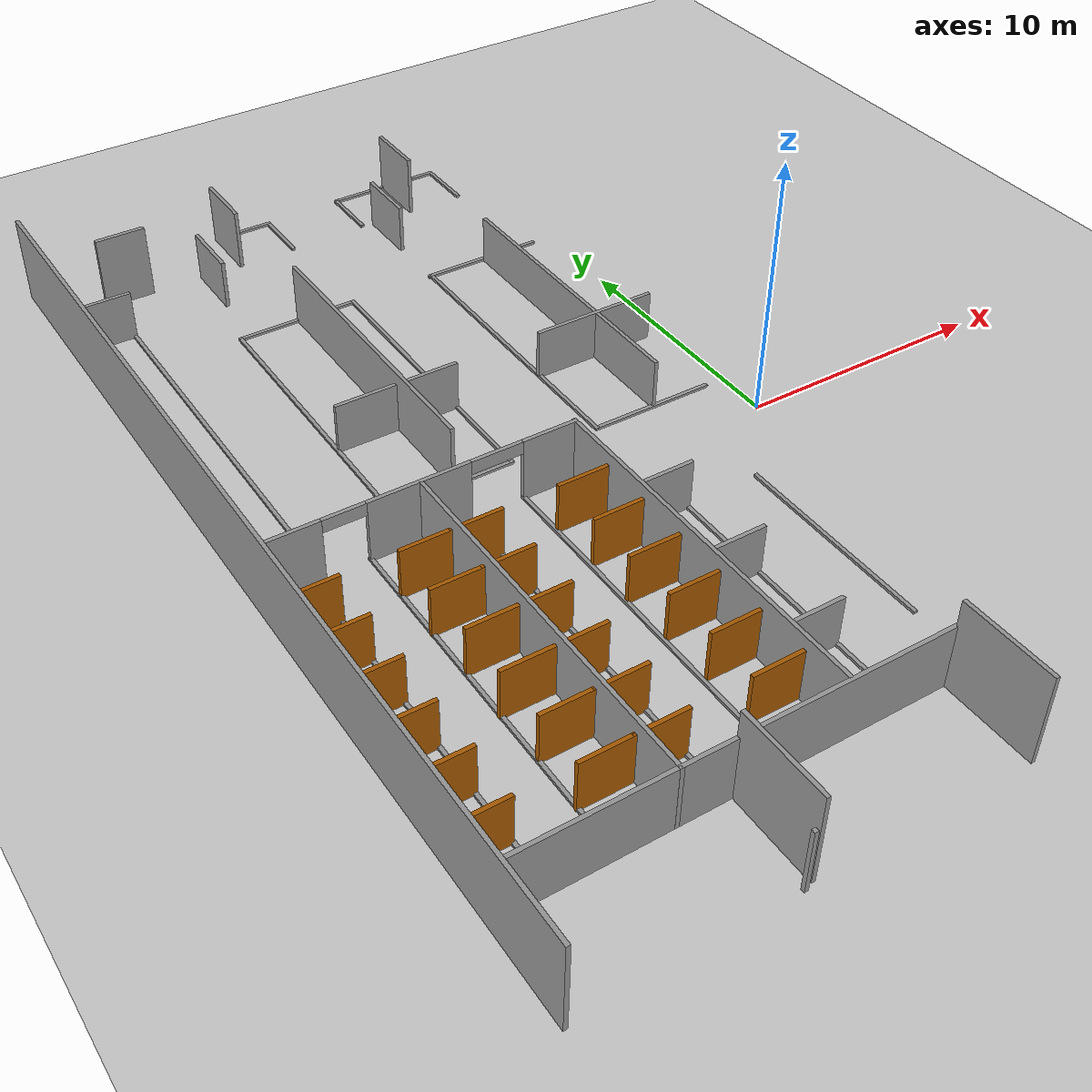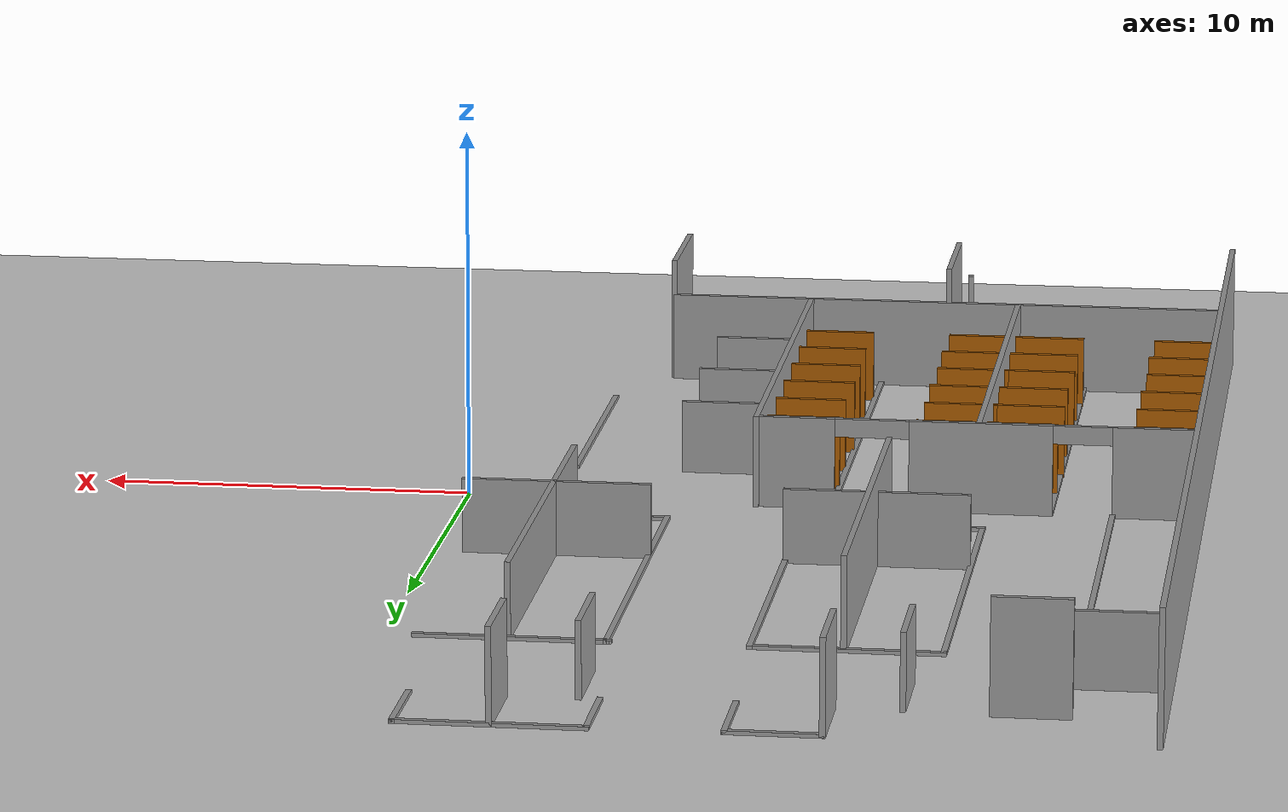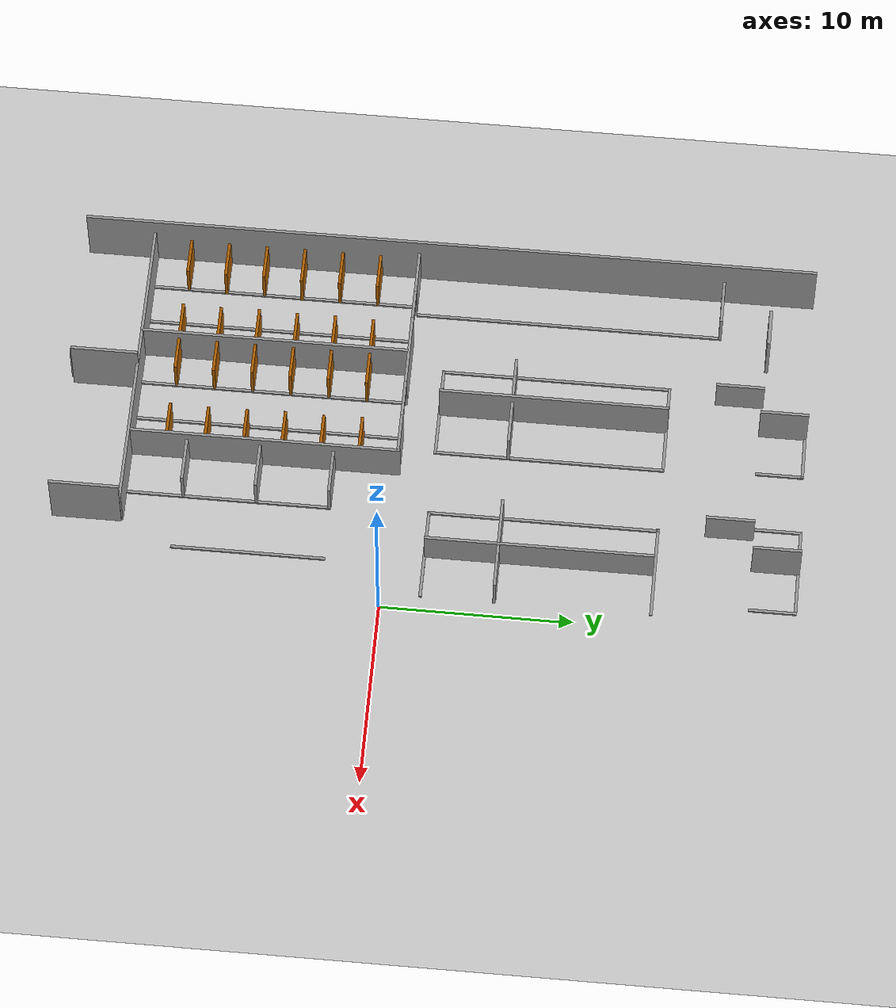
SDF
<sdf version="1.7">
 <world name="default">
  <model name="ground_plane">
   <static>1</static>
   <link name="link">
    <collision name="collision">
     <geometry><plane><normal>0 0 1</normal><size>100 100</size></plane></geometry>
     <surface><friction><ode><mu>100</mu><mu2>50</mu2></ode></friction></surface>
    </collision>
    <visual name="visual">
     <cast_shadows>0</cast_shadows>
     <geometry><plane><normal>0 0 1</normal><size>100 100</size></plane></geometry>
     <material>
      <script><uri>file://media/materials/scripts/gazebo.material</uri><name>Gazebo/Grey</name></script>
     </material>
    </visual>
   </link>
  </model>
  <model name="ATC_hall">
   <pose>0.064513 1.99679 0 0 -0 0</pose>
   <link name="Door_8">
    <collision name="Door_8_Collision">
     <geometry><box><size>2 0.17 3</size></box></geometry>
     <pose>0 0 1.5 0 -0 0</pose>
    </collision>
    <visual name="Door_8_Visual">
     <pose>0 0 1.5 0 -0 0</pose>
     <geometry><box><size>2 0.17 3</size></box></geometry>
     <material>
      <script><uri>file://media/materials/scripts/gazebo.material</uri><name>Gazebo/Grey</name></script>
     </material>
    </visual>
    <pose>-16.713 16.852 0 0 -0 0</pose>
   </link>
   <link name="Wall_11">
    <collision name="Wall_11_Collision">
     <geometry><box><size>0.15 0.15 2.5</size></box></geometry>
     <pose>0 0 1.25 0 -0 0</pose>
    </collision>
    <visual name="Wall_11_Visual">
     <pose>0 0 1.25 0 -0 0</pose>
     <geometry><box><size>0.15 0.15 2.5</size></box></geometry>
     <material>
      <script><uri>file://media/materials/scripts/gazebo.material</uri><name>Gazebo/Grey</name></script>
      <ambient>1 1 1 1</ambient>
     </material>
     <meta><layer>0</layer></meta>
    </visual>
    <pose>-12.273 -19.224 0 0 -0 0</pose>
   </link>
   <link name="Wall_13">
    <collision name="Wall_13_Collision">
     <geometry><box><size>3.5 0.15 3.5</size></box></geometry>
     <pose>0 0 1.75 0 -0 0</pose>
    </collision>
    <visual name="Wall_13_Visual">
     <pose>0 0 1.75 0 -0 0</pose>
     <geometry><box><size>3.5 0.15 3.5</size></box></geometry>
     <material>
      <script><uri>file://media/materials/scripts/gazebo.material</uri><name>Gazebo/Grey</name></script>
      <ambient>0.890196 0.890196 0.890196 1</ambient>
     </material>
     <meta><layer>0</layer></meta>
    </visual>
    <pose>-11.92 -17.41 0 0 -0 1.5708</pose>
   </link>
   <link name="Wall_15">
    <collision name="Wall_15_Collision">
     <geometry><box><size>3.6 0.15 3.5</size></box></geometry>
     <pose>0 0 1.75 0 -0 0</pose>
    </collision>
    <visual name="Wall_15_Visual">
     <pose>0 0 1.75 0 -0 0</pose>
     <geometry><box><size>3.6 0.15 3.5</size></box></geometry>
     <material>
      <script><uri>file://media/materials/scripts/gazebo.material</uri><name>Gazebo/Grey</name></script>
      <ambient>0.890196 0.890196 0.890196 1</ambient>
     </material>
     <meta><layer>0</layer></meta>
    </visual>
    <pose>-3.92 -17.519 0 0 -0 -1.5708</pose>
   </link>
   <link name="Wall_199">
    <collision name="Wall_199_Collision">
     <geometry><box><size>16.059 0.15 0.1</size></box></geometry>
     <pose>0 0 0.05 0 -0 0</pose>
    </collision>
    <visual name="Wall_199_Visual">
     <pose>0 0 0.05 0 -0 0</pose>
     <geometry><box><size>16.059 0.15 0.1</size></box></geometry>
     <material>
      <script><uri>file://media/materials/scripts/gazebo.material</uri><name>Gazebo/Grey</name></script>
      <ambient>0.454902 0.454902 0.454902 1</ambient>
     </material>
     <meta><layer>0</layer></meta>
    </visual>
    <pose>-17.5375 6.3535 0 0 -0 -1.57048</pose>
   </link>
   <link name="Wall_204">
    <collision name="Wall_204_Collision">
     <geometry><box><size>14 0.15 0.1</size></box></geometry>
     <pose>0 0 0.05 0 -0 0</pose>
    </collision>
    <visual name="Wall_204_Visual">
     <pose>0 0 0.05 0 -0 0</pose>
     <geometry><box><size>14 0.15 0.1</size></box></geometry>
     <material>
      <script><uri>file://media/materials/scripts/gazebo.material</uri><name>Gazebo/Grey</name></script>
      <ambient>0.462745 0.462745 0.462745 1</ambient>
     </material>
     <meta><layer>0</layer></meta>
    </visual>
    <pose>-18.002 -8.696 0 0 -0 -1.5708</pose>
   </link>
   <link name="Wall_206">
    <collision name="Wall_206_Collision">
     <geometry><box><size>14 0.15 0.1</size></box></geometry>
     <pose>0 0 0.05 0 -0 0</pose>
    </collision>
    <visual name="Wall_206_Visual">
     <pose>0 0 0.05 0 -0 0</pose>
     <geometry><box><size>14 0.15 0.1</size></box></geometry>
     <material>
      <script><uri>file://media/materials/scripts/gazebo.material</uri><name>Gazebo/Grey</name></script>
      <ambient>0.462745 0.462745 0.462745 1</ambient>
     </material>
     <meta><layer>0</layer></meta>
    </visual>
    <pose>-15.864 -8.685 0 0 -0 -1.5708</pose>
   </link>
   <link name="Wall_208">
    <collision name="Wall_208_Collision">
     <geometry><box><size>14 0.15 0.1</size></box></geometry>
     <pose>0 0 0.05 0 -0 0</pose>
    </collision>
    <visual name="Wall_208_Visual">
     <pose>0 0 0.05 0 -0 0</pose>
     <geometry><box><size>14 0.15 0.1</size></box></geometry>
     <material>
      <script><uri>file://media/materials/scripts/gazebo.material</uri><name>Gazebo/Grey</name></script>
      <ambient>0.462745 0.462745 0.462745 1</ambient>
     </material>
     <meta><layer>0</layer></meta>
    </visual>
    <pose>-12.133 -8.708 0 0 -0 -1.5708</pose>
   </link>
   <link name="Wall_21">
    <collision name="Wall_21_Collision">
     <geometry><box><size>16.1 0.15 2.5</size></box></geometry>
     <pose>0 0 1.25 0 -0 0</pose>
    </collision>
    <visual name="Wall_21_Visual">
     <pose>0 0 1.25 0 -0 0</pose>
     <geometry><box><size>16.1 0.15 2.5</size></box></geometry>
     <material>
      <script><uri>file://media/materials/scripts/gazebo.material</uri><name>Gazebo/Grey</name></script>
      <ambient>0.890196 0.890196 0.890196 1</ambient>
     </material>
     <meta><layer>0</layer></meta>
    </visual>
    <pose>-11.934 -15.713 0 0 -0 0</pose>
   </link>
   <link name="Wall_211">
    <collision name="Wall_211_Collision">
     <geometry><box><size>14 0.15 0.1</size></box></geometry>
     <pose>0 0 0.05 0 -0 0</pose>
    </collision>
    <visual name="Wall_211_Visual">
     <pose>0 0 0.05 0 -0 0</pose>
     <geometry><box><size>14 0.15 0.1</size></box></geometry>
     <material>
      <script><uri>file://media/materials/scripts/gazebo.material</uri><name>Gazebo/Grey</name></script>
      <ambient>0.462745 0.462745 0.462745 1</ambient>
     </material>
     <meta><layer>0</layer></meta>
    </visual>
    <pose>-9.981 -8.67 0 0 -0 -1.5708</pose>
   </link>
   <link name="Wall_213">
    <collision name="Wall_213_Collision">
     <geometry><box><size>2.5 0.15 0.1</size></box></geometry>
     <pose>0 0 0.05 0 -0 0</pose>
    </collision>
    <visual name="Wall_213_Visual">
     <pose>0 0 0.05 0 -0 0</pose>
     <geometry><box><size>2.5 0.15 0.1</size></box></geometry>
     <material>
      <script><uri>file://media/materials/scripts/gazebo.material</uri><name>Gazebo/Grey</name></script>
      <ambient>0.454902 0.454902 0.454902 1</ambient>
     </material>
     <meta><layer>0</layer></meta>
    </visual>
    <pose>-10.745 19.117 0 0 -0 0</pose>
   </link>
   <link name="Wall_216">
    <collision name="Wall_216_Collision">
     <geometry><box><size>2.5 0.15 0.1</size></box></geometry>
     <pose>0 0 0.05 0 -0 0</pose>
    </collision>
    <visual name="Wall_216_Visual">
     <pose>0 0 0.05 0 -0 0</pose>
     <geometry><box><size>2.5 0.15 0.1</size></box></geometry>
     <material>
      <script><uri>file://media/materials/scripts/gazebo.material</uri><name>Gazebo/Grey</name></script>
      <ambient>0.454902 0.454902 0.454902 1</ambient>
     </material>
     <meta><layer>0</layer></meta>
    </visual>
    <pose>-9.57 17.942 0 0 -0 -1.5708</pose>
   </link>
   <link name="Wall_220">
    <collision name="Wall_220_Collision">
     <geometry><box><size>2.5 0.15 0.1</size></box></geometry>
     <pose>0 0 0.05 0 -0 0</pose>
    </collision>
    <visual name="Wall_220_Visual">
     <pose>0 0 0.05 0 -0 0</pose>
     <geometry><box><size>2.5 0.15 0.1</size></box></geometry>
     <material>
      <script><uri>file://media/materials/scripts/gazebo.material</uri><name>Gazebo/Grey</name></script>
      <ambient>0.462745 0.462745 0.462745 1</ambient>
     </material>
     <meta><layer>0</layer></meta>
    </visual>
    <pose>-5.095 19.238 0 0 -0 3.14159</pose>
   </link>
   <link name="Wall_222">
    <collision name="Wall_222_Collision">
     <geometry><box><size>2.5 0.15 0.1</size></box></geometry>
     <pose>0 0 0.05 0 -0 0</pose>
    </collision>
    <visual name="Wall_222_Visual">
     <pose>0 0 0.05 0 -0 0</pose>
     <geometry><box><size>2.5 0.15 0.1</size></box></geometry>
     <material>
      <script><uri>file://media/materials/scripts/gazebo.material</uri><name>Gazebo/Grey</name></script>
      <ambient>0.454902 0.454902 0.454902 1</ambient>
     </material>
     <meta><layer>0</layer></meta>
    </visual>
    <pose>-6.27 18.063 0 0 -0 -1.5708</pose>
   </link>
   <link name="Wall_224">
    <collision name="Wall_224_Collision">
     <geometry><box><size>2.5 0.15 0.1</size></box></geometry>
     <pose>0 0 0.05 0 -0 0</pose>
    </collision>
    <visual name="Wall_224_Visual">
     <pose>0 0 0.05 0 -0 0</pose>
     <geometry><box><size>2.5 0.15 0.1</size></box></geometry>
     <material>
      <script><uri>file://media/materials/scripts/gazebo.material</uri><name>Gazebo/Grey</name></script>
      <ambient>0.462745 0.462745 0.462745 1</ambient>
     </material>
     <meta><layer>0</layer></meta>
    </visual>
    <pose>-2.745 19.238 0 0 -0 0</pose>
   </link>
   <link name="Wall_226">
    <collision name="Wall_226_Collision">
     <geometry><box><size>2.5 0.15 0.1</size></box></geometry>
     <pose>0 0 0.05 0 -0 0</pose>
    </collision>
    <visual name="Wall_226_Visual">
     <pose>0 0 0.05 0 -0 0</pose>
     <geometry><box><size>2.5 0.15 0.1</size></box></geometry>
     <material>
      <script><uri>file://media/materials/scripts/gazebo.material</uri><name>Gazebo/Grey</name></script>
      <ambient>0.462745 0.462745 0.462745 1</ambient>
     </material>
     <meta><layer>0</layer></meta>
    </visual>
    <pose>-1.57 18.063 0 0 -0 -1.5708</pose>
   </link>
   <link name="Wall_25">
    <collision name="Wall_25_Collision">
     <geometry><box><size>14.0341 0.15 2.5</size></box></geometry>
     <pose>0 0 1.25 0 -0 0</pose>
    </collision>
    <visual name="Wall_25_Visual">
     <pose>0 0 1.25 0 -0 0</pose>
     <geometry><box><size>14.0341 0.15 2.5</size></box></geometry>
     <material>
      <script><uri>file://media/materials/scripts/gazebo.material</uri><name>Gazebo/Grey</name></script>
      <ambient>0.890196 0.890196 0.890196 1</ambient>
     </material>
     <meta><layer>0</layer></meta>
    </visual>
    <pose>-7.92273 -8.65395 0 0 -0 1.57119</pose>
   </link>
   <link name="Wall_27">
    <pose>-13.8505 -1.75145 0 0 -0 3.14159</pose>
    <visual name="Wall_27_Visual_0">
     <pose>-4.90273 0 1.25 0 -0 0</pose>
     <geometry><box><size>2.19455 0.15 2.5</size></box></geometry>
     <material>
      <script><uri>file://media/materials/scripts/gazebo.material</uri><name>Gazebo/Grey</name></script>
      <ambient>0.890196 0.890196 0.890196 1</ambient>
     </material>
     <meta><layer>0</layer></meta>
    </visual>
    <collision name="Wall_27_Collision_0">
     <geometry><box><size>2.19455 0.15 2.5</size></box></geometry>
     <pose>-4.90273 0 1.25 0 -0 0</pose>
    </collision>
    <visual name="Wall_27_Visual_1">
     <pose>0.128549 0 1.25 0 -0 0</pose>
     <geometry><box><size>3.868 0.15 2.5</size></box></geometry>
     <material>
      <script><uri>file://media/materials/scripts/gazebo.material</uri><name>Gazebo/Grey</name></script>
      <ambient>0.890196 0.890196 0.890196 1</ambient>
     </material>
     <meta><layer>0</layer></meta>
    </visual>
    <collision name="Wall_27_Collision_1">
     <geometry><box><size>3.868 0.15 2.5</size></box></geometry>
     <pose>0.128549 0 1.25 0 -0 0</pose>
    </collision>
    <visual name="Wall_27_Visual_2">
     <pose>4.83127 0 1.25 0 -0 0</pose>
     <geometry><box><size>2.33745 0.15 2.5</size></box></geometry>
     <material>
      <script><uri>file://media/materials/scripts/gazebo.material</uri><name>Gazebo/Grey</name></script>
      <ambient>0.890196 0.890196 0.890196 1</ambient>
     </material>
     <meta><layer>0</layer></meta>
    </visual>
    <collision name="Wall_27_Collision_2">
     <geometry><box><size>2.33745 0.15 2.5</size></box></geometry>
     <pose>4.83127 0 1.25 0 -0 0</pose>
    </collision>
    <visual name="Wall_27_Visual_3">
     <pose>-2.80545 0 2.25 0 -0 0</pose>
     <geometry><box><size>2 0.15 0.5</size></box></geometry>
     <material>
      <script><uri>file://media/materials/scripts/gazebo.material</uri><name>Gazebo/Grey</name></script>
      <ambient>0.890196 0.890196 0.890196 1</ambient>
     </material>
     <meta><layer>0</layer></meta>
    </visual>
    <collision name="Wall_27_Collision_3">
     <geometry><box><size>2 0.15 0.5</size></box></geometry>
     <pose>-2.80545 0 2.25 0 -0 0</pose>
    </collision>
    <visual name="Wall_27_Visual_4">
     <pose>2.86255 0 2.25 0 -0 0</pose>
     <geometry><box><size>1.6 0.15 0.5</size></box></geometry>
     <material>
      <script><uri>file://media/materials/scripts/gazebo.material</uri><name>Gazebo/Grey</name></script>
      <ambient>0.890196 0.890196 0.890196 1</ambient>
     </material>
     <meta><layer>0</layer></meta>
    </visual>
    <collision name="Wall_27_Collision_4">
     <geometry><box><size>1.6 0.15 0.5</size></box></geometry>
     <pose>2.86255 0 2.25 0 -0 0</pose>
    </collision>
   </link>
   <link name="Wall_29">
    <collision name="Wall_29_Collision">
     <geometry><box><size>14 0.15 2.5</size></box></geometry>
     <pose>0 0 1.25 0 -0 0</pose>
    </collision>
    <visual name="Wall_29_Visual">
     <pose>0 0 1.25 0 -0 0</pose>
     <geometry><box><size>14 0.15 2.5</size></box></geometry>
     <material>
      <script><uri>file://media/materials/scripts/gazebo.material</uri><name>Gazebo/Grey</name></script>
      <ambient>0.890196 0.890196 0.890196 1</ambient>
     </material>
     <meta><layer>0</layer></meta>
    </visual>
    <pose>-13.92 -8.791 0 0 -0 1.5708</pose>
   </link>
   <link name="Wall_306">
    <collision name="Wall_306_Collision">
     <geometry><box><size>2.5 0.15 2</size></box></geometry>
     <pose>0 0 1 0 -0 0</pose>
    </collision>
    <visual name="Wall_306_Visual">
     <pose>0 0 1 0 -0 0</pose>
     <geometry><box><size>2.5 0.15 2</size></box></geometry>
     <material>
      <script><uri>file://media/materials/scripts/gazebo.material</uri><name>Gazebo/Grey</name></script>
      <ambient>0 0 0 1</ambient>
     </material>
     <meta><layer>0</layer></meta>
    </visual>
    <pose>-13.62 15.573 0 0 -0 -1.5708</pose>
   </link>
   <link name="Wall_310">
    <collision name="Wall_310_Collision">
     <geometry><box><size>2.5 0.15 2</size></box></geometry>
     <pose>0 0 1 0 -0 0</pose>
    </collision>
    <visual name="Wall_310_Visual">
     <pose>0 0 1 0 -0 0</pose>
     <geometry><box><size>2.5 0.15 2</size></box></geometry>
     <material>
      <script><uri>file://media/materials/scripts/gazebo.material</uri><name>Gazebo/Grey</name></script>
      <ambient>0 0 0 1</ambient>
     </material>
     <meta><layer>0</layer></meta>
    </visual>
    <pose>-5.735 15.573 0 0 -0 -1.5708</pose>
   </link>
   <link name="Wall_325">
    <collision name="Wall_325_Collision">
     <geometry><box><size>0.15 0.15 0.1</size></box></geometry>
     <pose>0 0 0.05 0 -0 0</pose>
    </collision>
    <visual name="Wall_325_Visual">
     <pose>0 0 0.05 0 -0 0</pose>
     <geometry><box><size>0.15 0.15 0.1</size></box></geometry>
     <material>
      <script><uri>file://media/materials/scripts/gazebo.material</uri><name>Gazebo/Grey</name></script>
      <ambient>1 1 1 1</ambient>
     </material>
     <meta><layer>0</layer></meta>
    </visual>
    <pose>-5.803 11.898 0 0 -0 0</pose>
   </link>
   <link name="Wall_327">
    <collision name="Wall_327_Collision">
     <geometry><box><size>12 0.15 0.1</size></box></geometry>
     <pose>0 0 0.05 0 -0 0</pose>
    </collision>
    <visual name="Wall_327_Visual">
     <pose>0 0 0.05 0 -0 0</pose>
     <geometry><box><size>12 0.15 0.1</size></box></geometry>
     <material>
      <script><uri>file://media/materials/scripts/gazebo.material</uri><name>Gazebo/Grey</name></script>
      <ambient>0.454902 0.454902 0.454902 1</ambient>
     </material>
     <meta><layer>0</layer></meta>
    </visual>
    <pose>-5.735 5.973 0 0 -0 -1.5708</pose>
   </link>
   <link name="Wall_329">
    <collision name="Wall_329_Collision">
     <geometry><box><size>5 0.15 0.1</size></box></geometry>
     <pose>0 0 0.05 0 -0 0</pose>
    </collision>
    <visual name="Wall_329_Visual">
     <pose>0 0 0.05 0 -0 0</pose>
     <geometry><box><size>5 0.15 0.1</size></box></geometry>
     <material>
      <script><uri>file://media/materials/scripts/gazebo.material</uri><name>Gazebo/Grey</name></script>
      <ambient>0.454902 0.454902 0.454902 1</ambient>
     </material>
     <meta><layer>0</layer></meta>
    </visual>
    <pose>-3.31 11.893 0 0 -0 -0.002062</pose>
   </link>
   <link name="Wall_33">
    <collision name="Wall_33_Collision">
     <geometry><box><size>2 0.15 2</size></box></geometry>
     <pose>0 0 1 0 -0 0</pose>
    </collision>
    <visual name="Wall_33_Visual">
     <pose>0 0 1 0 -0 0</pose>
     <geometry><box><size>2 0.15 2</size></box></geometry>
     <material>
      <script><uri>file://media/materials/scripts/gazebo.material</uri><name>Gazebo/Grey</name></script>
      <ambient>0.666667 0.356863 0 1</ambient>
     </material>
     <meta><layer>0</layer></meta>
    </visual>
    <pose>-18.965 -13.791 0 0 -0 0</pose>
   </link>
   <link name="Wall_334">
    <collision name="Wall_334_Collision">
     <geometry><box><size>5 0.15 0.1</size></box></geometry>
     <pose>0 0 0.05 0 -0 0</pose>
    </collision>
    <visual name="Wall_334_Visual">
     <pose>0 0 0.05 0 -0 0</pose>
     <geometry><box><size>5 0.15 0.1</size></box></geometry>
     <material>
      <script><uri>file://media/materials/scripts/gazebo.material</uri><name>Gazebo/Grey</name></script>
      <ambient>0.454902 0.454902 0.454902 1</ambient>
     </material>
     <meta><layer>0</layer></meta>
    </visual>
    <pose>-3.31 0.042999 0 0 -0 3.13953</pose>
   </link>
   <link name="Wall_336">
    <collision name="Wall_336_Collision">
     <geometry><box><size>11.8 0.15 2</size></box></geometry>
     <pose>0 0 1 0 -0 0</pose>
    </collision>
    <visual name="Wall_336_Visual">
     <pose>0 0 1 0 -0 0</pose>
     <geometry><box><size>11.8 0.15 2</size></box></geometry>
     <material>
      <script><uri>file://media/materials/scripts/gazebo.material</uri><name>Gazebo/Grey</name></script>
      <ambient>0 0 0 1</ambient>
     </material>
     <meta><layer>0</layer></meta>
    </visual>
    <pose>-3.235 5.932 0 0 -0 -1.5708</pose>
   </link>
   <link name="Wall_338">
    <collision name="Wall_338_Collision">
     <geometry><box><size>5 0.15 2</size></box></geometry>
     <pose>0 0 1 0 -0 0</pose>
    </collision>
    <visual name="Wall_338_Visual">
     <pose>0 0 1 0 -0 0</pose>
     <geometry><box><size>5 0.15 2</size></box></geometry>
     <material>
      <script><uri>file://media/materials/scripts/gazebo.material</uri><name>Gazebo/Grey</name></script>
      <ambient>0 0 0 1</ambient>
     </material>
     <meta><layer>0</layer></meta>
    </visual>
    <pose>-3.31 3.848 0 0 -0 0</pose>
   </link>
   <link name="Wall_340">
    <collision name="Wall_340_Collision">
     <geometry><box><size>12 0.15 0.1</size></box></geometry>
     <pose>0 0 0.05 0 -0 0</pose>
    </collision>
    <visual name="Wall_340_Visual">
     <pose>0 0 0.05 0 -0 0</pose>
     <geometry><box><size>12 0.15 0.1</size></box></geometry>
     <material>
      <script><uri>file://media/materials/scripts/gazebo.material</uri><name>Gazebo/Grey</name></script>
      <ambient>0.454902 0.454902 0.454902 1</ambient>
     </material>
     <meta><layer>0</layer></meta>
    </visual>
    <pose>-9.335 5.973 0 0 -0 -1.5708</pose>
   </link>
   <link name="Wall_343">
    <collision name="Wall_343_Collision">
     <geometry><box><size>5 0.15 0.1</size></box></geometry>
     <pose>0 0 0.05 0 -0 0</pose>
    </collision>
    <visual name="Wall_343_Visual">
     <pose>0 0 0.05 0 -0 0</pose>
     <geometry><box><size>5 0.15 0.1</size></box></geometry>
     <material>
      <script><uri>file://media/materials/scripts/gazebo.material</uri><name>Gazebo/Grey</name></script>
      <ambient>0.454902 0.454902 0.454902 1</ambient>
     </material>
     <meta><layer>0</layer></meta>
    </visual>
    <pose>-11.76 11.898 0 0 -0 3.14159</pose>
   </link>
   <link name="Wall_345">
    <collision name="Wall_345_Collision">
     <geometry><box><size>12 0.15 0.1</size></box></geometry>
     <pose>0 0 0.05 0 -0 0</pose>
    </collision>
    <visual name="Wall_345_Visual">
     <pose>0 0 0.05 0 -0 0</pose>
     <geometry><box><size>12 0.15 0.1</size></box></geometry>
     <material>
      <script><uri>file://media/materials/scripts/gazebo.material</uri><name>Gazebo/Grey</name></script>
      <ambient>0.454902 0.454902 0.454902 1</ambient>
     </material>
     <meta><layer>0</layer></meta>
    </visual>
    <pose>-14.185 5.973 0 0 -0 -1.5708</pose>
   </link>
   <link name="Wall_347">
    <collision name="Wall_347_Collision">
     <geometry><box><size>5 0.15 0.1</size></box></geometry>
     <pose>0 0 0.05 0 -0 0</pose>
    </collision>
    <visual name="Wall_347_Visual">
     <pose>0 0 0.05 0 -0 0</pose>
     <geometry><box><size>5 0.15 0.1</size></box></geometry>
     <material>
      <script><uri>file://media/materials/scripts/gazebo.material</uri><name>Gazebo/Grey</name></script>
      <ambient>0.454902 0.454902 0.454902 1</ambient>
     </material>
     <meta><layer>0</layer></meta>
    </visual>
    <pose>-11.76 0.047999 0 0 -0 0</pose>
   </link>
   <link name="Wall_349">
    <collision name="Wall_349_Collision">
     <geometry><box><size>4.9 0.15 2</size></box></geometry>
     <pose>0 0 1 0 -0 0</pose>
    </collision>
    <visual name="Wall_349_Visual">
     <pose>0 0 1 0 -0 0</pose>
     <geometry><box><size>4.9 0.15 2</size></box></geometry>
     <material>
      <script><uri>file://media/materials/scripts/gazebo.material</uri><name>Gazebo/Grey</name></script>
      <ambient>0 0 0 1</ambient>
     </material>
     <meta><layer>0</layer></meta>
    </visual>
    <pose>-11.726 3.848 0 0 -0 3.14159</pose>
   </link>
   <link name="Wall_352">
    <collision name="Wall_352_Collision">
     <geometry><box><size>11.9 0.15 2.5</size></box></geometry>
     <pose>0 0 1.25 0 -0 0</pose>
    </collision>
    <visual name="Wall_352_Visual">
     <pose>0 0 1.25 0 -0 0</pose>
     <geometry><box><size>11.9 0.15 2.5</size></box></geometry>
     <material>
      <script><uri>file://media/materials/scripts/gazebo.material</uri><name>Gazebo/Grey</name></script>
      <ambient>0 0 0 1</ambient>
     </material>
     <meta><layer>0</layer></meta>
    </visual>
    <pose>-11.685 5.992 0 0 -0 -1.5708</pose>
   </link>
   <link name="Wall_37">
    <collision name="Wall_37_Collision">
     <geometry><box><size>2 0.15 2</size></box></geometry>
     <pose>0 0 1 0 -0 0</pose>
    </collision>
    <visual name="Wall_37_Visual">
     <pose>0 0 1 0 -0 0</pose>
     <geometry><box><size>2 0.15 2</size></box></geometry>
     <material>
      <script><uri>file://media/materials/scripts/gazebo.material</uri><name>Gazebo/Grey</name></script>
      <ambient>0.666667 0.356863 0 1</ambient>
     </material>
     <meta><layer>0</layer></meta>
    </visual>
    <pose>-18.92 -11.791 0 0 -0 0</pose>
   </link>
   <link name="Wall_39">
    <collision name="Wall_39_Collision">
     <geometry><box><size>2 0.15 2</size></box></geometry>
     <pose>0 0 1 0 -0 0</pose>
    </collision>
    <visual name="Wall_39_Visual">
     <pose>0 0 1 0 -0 0</pose>
     <geometry><box><size>2 0.15 2</size></box></geometry>
     <material>
      <script><uri>file://media/materials/scripts/gazebo.material</uri><name>Gazebo/Grey</name></script>
      <ambient>0.666667 0.356863 0 1</ambient>
     </material>
     <meta><layer>0</layer></meta>
    </visual>
    <pose>-18.965 -9.791 0 0 -0 0</pose>
   </link>
   <link name="Wall_392">
    <collision name="Wall_392_Collision">
     <geometry><box><size>2.5 0.15 2</size></box></geometry>
     <pose>0 0 1 0 -0 0</pose>
    </collision>
    <visual name="Wall_392_Visual">
     <pose>0 0 1 0 -0 0</pose>
     <geometry><box><size>2.5 0.15 2</size></box></geometry>
     <material>
      <script><uri>file://media/materials/scripts/gazebo.material</uri><name>Gazebo/Grey</name></script>
      <ambient>0 0 0 1</ambient>
     </material>
     <meta><layer>0</layer></meta>
    </visual>
    <pose>-6.739 -5.098 0 0 -0 0</pose>
   </link>
   <link name="Wall_394">
    <collision name="Wall_394_Collision">
     <geometry><box><size>10.75 0.15 0.1</size></box></geometry>
     <pose>0 0 0.05 0 -0 0</pose>
    </collision>
    <visual name="Wall_394_Visual">
     <pose>0 0 0.05 0 -0 0</pose>
     <geometry><box><size>10.75 0.15 0.1</size></box></geometry>
     <material>
      <script><uri>file://media/materials/scripts/gazebo.material</uri><name>Gazebo/Grey</name></script>
      <ambient>0.462745 0.462745 0.462745 1</ambient>
     </material>
     <meta><layer>0</layer></meta>
    </visual>
    <pose>-5.564 -10.398 0 0 -0 -1.5708</pose>
   </link>
   <link name="Wall_397">
    <collision name="Wall_397_Collision">
     <geometry><box><size>2.5 0.15 2</size></box></geometry>
     <pose>0 0 1 0 -0 0</pose>
    </collision>
    <visual name="Wall_397_Visual">
     <pose>0 0 1 0 -0 0</pose>
     <geometry><box><size>2.5 0.15 2</size></box></geometry>
     <material>
      <script><uri>file://media/materials/scripts/gazebo.material</uri><name>Gazebo/Grey</name></script>
      <ambient>0 0 0 1</ambient>
     </material>
     <meta><layer>0</layer></meta>
    </visual>
    <pose>-6.739 -8.898 0 0 -0 0</pose>
   </link>
   <link name="Wall_399">
    <collision name="Wall_399_Collision">
     <geometry><box><size>2.4 0.15 2</size></box></geometry>
     <pose>0 0 1 0 -0 0</pose>
    </collision>
    <visual name="Wall_399_Visual">
     <pose>0 0 1 0 -0 0</pose>
     <geometry><box><size>2.4 0.15 2</size></box></geometry>
     <material>
      <script><uri>file://media/materials/scripts/gazebo.material</uri><name>Gazebo/Grey</name></script>
      <ambient>0 0 0 1</ambient>
     </material>
     <meta><layer>0</layer></meta>
    </visual>
    <pose>-6.73 -12.698 0 0 -0 0</pose>
   </link>
   <link name="Wall_403">
    <collision name="Wall_403_Collision">
     <geometry><box><size>8 0.15 0.1</size></box></geometry>
     <pose>0 0 0.05 0 -0 0</pose>
    </collision>
    <visual name="Wall_403_Visual">
     <pose>0 0 0.05 0 -0 0</pose>
     <geometry><box><size>8 0.15 0.1</size></box></geometry>
     <material>
      <script><uri>file://media/materials/scripts/gazebo.material</uri><name>Gazebo/Grey</name></script>
      <ambient>0.462745 0.462745 0.462745 1</ambient>
     </material>
     <meta><layer>0</layer></meta>
    </visual>
    <pose>-2.564 -9.023 0 0 -0 -1.5708</pose>
   </link>
   <link name="Wall_41">
    <collision name="Wall_41_Collision">
     <geometry><box><size>2 0.15 2</size></box></geometry>
     <pose>0 0 1 0 -0 0</pose>
    </collision>
    <visual name="Wall_41_Visual">
     <pose>0 0 1 0 -0 0</pose>
     <geometry><box><size>2 0.15 2</size></box></geometry>
     <material>
      <script><uri>file://media/materials/scripts/gazebo.material</uri><name>Gazebo/Grey</name></script>
      <ambient>0.666667 0.356863 0 1</ambient>
     </material>
     <meta><layer>0</layer></meta>
    </visual>
    <pose>-18.92 -3.791 0 0 -0 0</pose>
   </link>
   <link name="Wall_43">
    <collision name="Wall_43_Collision">
     <geometry><box><size>2 0.15 2</size></box></geometry>
     <pose>0 0 1 0 -0 0</pose>
    </collision>
    <visual name="Wall_43_Visual">
     <pose>0 0 1 0 -0 0</pose>
     <geometry><box><size>2 0.15 2</size></box></geometry>
     <material>
      <script><uri>file://media/materials/scripts/gazebo.material</uri><name>Gazebo/Grey</name></script>
      <ambient>0.666667 0.356863 0 1</ambient>
     </material>
     <meta><layer>0</layer></meta>
    </visual>
    <pose>-18.92 -5.791 0 0 -0 0</pose>
   </link>
   <link name="Wall_45">
    <collision name="Wall_45_Collision">
     <geometry><box><size>2 0.15 2</size></box></geometry>
     <pose>0 0 1 0 -0 0</pose>
    </collision>
    <visual name="Wall_45_Visual">
     <pose>0 0 1 0 -0 0</pose>
     <geometry><box><size>2 0.15 2</size></box></geometry>
     <material>
      <script><uri>file://media/materials/scripts/gazebo.material</uri><name>Gazebo/Grey</name></script>
      <ambient>0.666667 0.356863 0 1</ambient>
     </material>
     <meta><layer>0</layer></meta>
    </visual>
    <pose>-18.92 -7.791 0 0 -0 0</pose>
   </link>
   <link name="Wall_49">
    <collision name="Wall_49_Collision">
     <geometry><box><size>2 0.15 2</size></box></geometry>
     <pose>0 0 1 0 -0 0</pose>
    </collision>
    <visual name="Wall_49_Visual">
     <pose>0 0 1 0 -0 0</pose>
     <geometry><box><size>2 0.15 2</size></box></geometry>
     <material>
      <script><uri>file://media/materials/scripts/gazebo.material</uri><name>Gazebo/Grey</name></script>
      <ambient>0.666667 0.356863 0 1</ambient>
     </material>
     <meta><layer>0</layer></meta>
    </visual>
    <pose>-14.909 -3.791 0 0 -0 3.14159</pose>
   </link>
   <link name="Wall_51">
    <collision name="Wall_51_Collision">
     <geometry><box><size>2 0.15 2</size></box></geometry>
     <pose>0 0 1 0 -0 0</pose>
    </collision>
    <visual name="Wall_51_Visual">
     <pose>0 0 1 0 -0 0</pose>
     <geometry><box><size>2 0.15 2</size></box></geometry>
     <material>
      <script><uri>file://media/materials/scripts/gazebo.material</uri><name>Gazebo/Grey</name></script>
      <ambient>0.666667 0.356863 0 1</ambient>
     </material>
     <meta><layer>0</layer></meta>
    </visual>
    <pose>-14.954 -5.791 0 0 -0 3.14159</pose>
   </link>
   <link name="Wall_53">
    <collision name="Wall_53_Collision">
     <geometry><box><size>1.994 0.15 2</size></box></geometry>
     <pose>0 0 1 0 -0 0</pose>
    </collision>
    <visual name="Wall_53_Visual">
     <pose>0 0 1 0 -0 0</pose>
     <geometry><box><size>1.994 0.15 2</size></box></geometry>
     <material>
      <script><uri>file://media/materials/scripts/gazebo.material</uri><name>Gazebo/Grey</name></script>
      <ambient>0.666667 0.356863 0 1</ambient>
     </material>
     <meta><layer>0</layer></meta>
    </visual>
    <pose>-14.906 -7.791 0 0 -0 3.14159</pose>
   </link>
   <link name="Wall_55">
    <collision name="Wall_55_Collision">
     <geometry><box><size>2 0.15 2</size></box></geometry>
     <pose>0 0 1 0 -0 0</pose>
    </collision>
    <visual name="Wall_55_Visual">
     <pose>0 0 1 0 -0 0</pose>
     <geometry><box><size>2 0.15 2</size></box></geometry>
     <material>
      <script><uri>file://media/materials/scripts/gazebo.material</uri><name>Gazebo/Grey</name></script>
      <ambient>0.666667 0.356863 0 1</ambient>
     </material>
     <meta><layer>0</layer></meta>
    </visual>
    <pose>-14.954 -9.791 0 0 -0 3.14159</pose>
   </link>
   <link name="Wall_57">
    <collision name="Wall_57_Collision">
     <geometry><box><size>2 0.15 2</size></box></geometry>
     <pose>0 0 1 0 -0 0</pose>
    </collision>
    <visual name="Wall_57_Visual">
     <pose>0 0 1 0 -0 0</pose>
     <geometry><box><size>2 0.15 2</size></box></geometry>
     <material>
      <script><uri>file://media/materials/scripts/gazebo.material</uri><name>Gazebo/Grey</name></script>
      <ambient>0.666667 0.356863 0 1</ambient>
     </material>
     <meta><layer>0</layer></meta>
    </visual>
    <pose>-14.909 -11.791 0 0 -0 3.14159</pose>
   </link>
   <link name="Wall_59">
    <collision name="Wall_59_Collision">
     <geometry><box><size>2 0.15 2</size></box></geometry>
     <pose>0 0 1 0 -0 0</pose>
    </collision>
    <visual name="Wall_59_Visual">
     <pose>0 0 1 0 -0 0</pose>
     <geometry><box><size>2 0.15 2</size></box></geometry>
     <material>
      <script><uri>file://media/materials/scripts/gazebo.material</uri><name>Gazebo/Grey</name></script>
      <ambient>0.666667 0.356863 0 1</ambient>
     </material>
     <meta><layer>0</layer></meta>
    </visual>
    <pose>-14.954 -13.791 0 0 -0 3.14159</pose>
   </link>
   <link name="Wall_6">
    <collision name="Wall_6_Collision">
     <geometry><box><size>38.38 0.15 3.5</size></box></geometry>
     <pose>0 0 1.75 0 -0 0</pose>
    </collision>
    <visual name="Wall_6_Visual">
     <pose>0 0 1.75 0 -0 0</pose>
     <geometry><box><size>38.38 0.15 3.5</size></box></geometry>
     <material>
      <script><uri>file://media/materials/scripts/gazebo.material</uri><name>Gazebo/Grey</name></script>
      <ambient>0.890196 0.890196 0.890196 1</ambient>
     </material>
     <meta><layer>0</layer></meta>
    </visual>
    <pose>-19.92 -0.109001 0 0 -0 1.5708</pose>
   </link>
   <link name="Wall_61">
    <collision name="Wall_61_Collision">
     <geometry><box><size>2 0.15 2</size></box></geometry>
     <pose>0 0 1 0 -0 0</pose>
    </collision>
    <visual name="Wall_61_Visual">
     <pose>0 0 1 0 -0 0</pose>
     <geometry><box><size>2 0.15 2</size></box></geometry>
     <material>
      <script><uri>file://media/materials/scripts/gazebo.material</uri><name>Gazebo/Grey</name></script>
      <ambient>0.666667 0.356863 0 1</ambient>
     </material>
     <meta><layer>0</layer></meta>
    </visual>
    <pose>-13.059 -3.791 0 0 -0 0</pose>
   </link>
   <link name="Wall_64">
    <collision name="Wall_64_Collision">
     <geometry><box><size>2 0.15 2</size></box></geometry>
     <pose>0 0 1 0 -0 0</pose>
    </collision>
    <visual name="Wall_64_Visual">
     <pose>0 0 1 0 -0 0</pose>
     <geometry><box><size>2 0.15 2</size></box></geometry>
     <material>
      <script><uri>file://media/materials/scripts/gazebo.material</uri><name>Gazebo/Grey</name></script>
      <ambient>0.666667 0.356863 0 1</ambient>
     </material>
     <meta><layer>0</layer></meta>
    </visual>
    <pose>-13.104 -5.791 0 0 -0 0</pose>
   </link>
   <link name="Wall_66">
    <collision name="Wall_66_Collision">
     <geometry><box><size>2 0.15 2</size></box></geometry>
     <pose>0 0 1 0 -0 0</pose>
    </collision>
    <visual name="Wall_66_Visual">
     <pose>0 0 1 0 -0 0</pose>
     <geometry><box><size>2 0.15 2</size></box></geometry>
     <material>
      <script><uri>file://media/materials/scripts/gazebo.material</uri><name>Gazebo/Grey</name></script>
      <ambient>0.666667 0.356863 0 1</ambient>
     </material>
     <meta><layer>0</layer></meta>
    </visual>
    <pose>-13.059 -7.791 0 0 -0 0</pose>
   </link>
   <link name="Wall_68">
    <collision name="Wall_68_Collision">
     <geometry><box><size>2 0.15 2</size></box></geometry>
     <pose>0 0 1 0 -0 0</pose>
    </collision>
    <visual name="Wall_68_Visual">
     <pose>0 0 1 0 -0 0</pose>
     <geometry><box><size>2 0.15 2</size></box></geometry>
     <material>
      <script><uri>file://media/materials/scripts/gazebo.material</uri><name>Gazebo/Grey</name></script>
      <ambient>0.666667 0.356863 0 1</ambient>
     </material>
     <meta><layer>0</layer></meta>
    </visual>
    <pose>-13.104 -9.791 0 0 -0 0</pose>
   </link>
   <link name="Wall_70">
    <collision name="Wall_70_Collision">
     <geometry><box><size>2 0.15 2</size></box></geometry>
     <pose>0 0 1 0 -0 0</pose>
    </collision>
    <visual name="Wall_70_Visual">
     <pose>0 0 1 0 -0 0</pose>
     <geometry><box><size>2 0.15 2</size></box></geometry>
     <material>
      <script><uri>file://media/materials/scripts/gazebo.material</uri><name>Gazebo/Grey</name></script>
      <ambient>0.666667 0.356863 0 1</ambient>
     </material>
     <meta><layer>0</layer></meta>
    </visual>
    <pose>-13.059 -11.791 0 0 -0 0</pose>
   </link>
   <link name="Wall_72">
    <collision name="Wall_72_Collision">
     <geometry><box><size>2 0.15 2</size></box></geometry>
     <pose>0 0 1 0 -0 0</pose>
    </collision>
    <visual name="Wall_72_Visual">
     <pose>0 0 1 0 -0 0</pose>
     <geometry><box><size>2 0.15 2</size></box></geometry>
     <material>
      <script><uri>file://media/materials/scripts/gazebo.material</uri><name>Gazebo/Grey</name></script>
      <ambient>0.666667 0.356863 0 1</ambient>
     </material>
     <meta><layer>0</layer></meta>
    </visual>
    <pose>-13.104 -13.791 0 0 -0 0</pose>
   </link>
   <link name="Wall_74">
    <collision name="Wall_74_Collision">
     <geometry><box><size>2 0.15 2</size></box></geometry>
     <pose>0 0 1 0 -0 0</pose>
    </collision>
    <visual name="Wall_74_Visual">
     <pose>0 0 1 0 -0 0</pose>
     <geometry><box><size>2 0.15 2</size></box></geometry>
     <material>
      <script><uri>file://media/materials/scripts/gazebo.material</uri><name>Gazebo/Grey</name></script>
      <ambient>0.666667 0.356863 0 1</ambient>
     </material>
     <meta><layer>0</layer></meta>
    </visual>
    <pose>-8.976 -3.791 0 0 -0 3.14159</pose>
   </link>
   <link name="Wall_76">
    <collision name="Wall_76_Collision">
     <geometry><box><size>2 0.15 2</size></box></geometry>
     <pose>0 0 1 0 -0 0</pose>
    </collision>
    <visual name="Wall_76_Visual">
     <pose>0 0 1 0 -0 0</pose>
     <geometry><box><size>2 0.15 2</size></box></geometry>
     <material>
      <script><uri>file://media/materials/scripts/gazebo.material</uri><name>Gazebo/Grey</name></script>
      <ambient>0.666667 0.356863 0 1</ambient>
     </material>
     <meta><layer>0</layer></meta>
    </visual>
    <pose>-8.931 -5.791 0 0 -0 3.14159</pose>
   </link>
   <link name="Wall_78">
    <collision name="Wall_78_Collision">
     <geometry><box><size>2 0.15 2</size></box></geometry>
     <pose>0 0 1 0 -0 0</pose>
    </collision>
    <visual name="Wall_78_Visual">
     <pose>0 0 1 0 -0 0</pose>
     <geometry><box><size>2 0.15 2</size></box></geometry>
     <material>
      <script><uri>file://media/materials/scripts/gazebo.material</uri><name>Gazebo/Grey</name></script>
      <ambient>0.658824 0.352941 0 1</ambient>
     </material>
     <meta><layer>0</layer></meta>
    </visual>
    <pose>-8.976 -7.791 0 0 -0 3.14159</pose>
   </link>
   <link name="Wall_80">
    <collision name="Wall_80_Collision">
     <geometry><box><size>2 0.15 2</size></box></geometry>
     <pose>0 0 1 0 -0 0</pose>
    </collision>
    <visual name="Wall_80_Visual">
     <pose>0 0 1 0 -0 0</pose>
     <geometry><box><size>2 0.15 2</size></box></geometry>
     <material>
      <script><uri>file://media/materials/scripts/gazebo.material</uri><name>Gazebo/Grey</name></script>
      <ambient>0.658824 0.352941 0 1</ambient>
     </material>
     <meta><layer>0</layer></meta>
    </visual>
    <pose>-8.931 -9.791 0 0 -0 3.14159</pose>
   </link>
   <link name="Wall_82">
    <collision name="Wall_82_Collision">
     <geometry><box><size>2 0.15 2</size></box></geometry>
     <pose>0 0 1 0 -0 0</pose>
    </collision>
    <visual name="Wall_82_Visual">
     <pose>0 0 1 0 -0 0</pose>
     <geometry><box><size>2 0.15 2</size></box></geometry>
     <material>
      <script><uri>file://media/materials/scripts/gazebo.material</uri><name>Gazebo/Grey</name></script>
      <ambient>0.658824 0.352941 0 1</ambient>
     </material>
     <meta><layer>0</layer></meta>
    </visual>
    <pose>-8.885 -11.791 0 0 -0 3.14159</pose>
   </link>
   <link name="Wall_84">
    <collision name="Wall_84_Collision">
     <geometry><box><size>2 0.15 2</size></box></geometry>
     <pose>0 0 1 0 -0 0</pose>
    </collision>
    <visual name="Wall_84_Visual">
     <pose>0 0 1 0 -0 0</pose>
     <geometry><box><size>2 0.15 2</size></box></geometry>
     <material>
      <script><uri>file://media/materials/scripts/gazebo.material</uri><name>Gazebo/Grey</name></script>
      <ambient>0.658824 0.352941 0 1</ambient>
     </material>
     <meta><layer>0</layer></meta>
    </visual>
    <pose>-8.931 -13.791 0 0 -0 3.14159</pose>
   </link>
   <link name="Wall_88">
    <collision name="Wall_88_Collision">
     <geometry><box><size>2.5 0.15 2</size></box></geometry>
     <pose>0 0 1 0 -0 0</pose>
    </collision>
    <visual name="Wall_88_Visual">
     <pose>0 0 1 0 -0 0</pose>
     <geometry><box><size>2.5 0.15 2</size></box></geometry>
     <material>
      <script><uri>file://media/materials/scripts/gazebo.material</uri><name>Gazebo/Grey</name></script>
      <ambient>0 0 0 1</ambient>
     </material>
     <meta><layer>0</layer></meta>
    </visual>
    <pose>-18.715 14.308 0 0 -0 0</pose>
   </link>
   <link name="Wall_93">
    <collision name="Wall_93_Collision">
     <geometry><box><size>2.5 0.15 2.5</size></box></geometry>
     <pose>0 0 1.25 0 -0 0</pose>
    </collision>
    <visual name="Wall_93_Visual">
     <pose>0 0 1.25 0 -0 0</pose>
     <geometry><box><size>2.5 0.15 2.5</size></box></geometry>
     <material>
      <script><uri>file://media/materials/scripts/gazebo.material</uri><name>Gazebo/Grey</name></script>
      <ambient>0 0 0 1</ambient>
     </material>
     <meta><layer>0</layer></meta>
    </visual>
    <pose>-11.92 17.942 0 0 -0 1.5708</pose>
   </link>
   <link name="Wall_95">
    <collision name="Wall_95_Collision">
     <geometry><box><size>2.5 0.15 2.5</size></box></geometry>
     <pose>0 0 1.25 0 -0 0</pose>
    </collision>
    <visual name="Wall_95_Visual">
     <pose>0 0 1.25 0 -0 0</pose>
     <geometry><box><size>2.5 0.15 2.5</size></box></geometry>
     <material>
      <script><uri>file://media/materials/scripts/gazebo.material</uri><name>Gazebo/Grey</name></script>
      <ambient>0 0 0 1</ambient>
     </material>
     <meta><layer>0</layer></meta>
    </visual>
    <pose>-3.92 18.063 0 0 -0 1.5708</pose>
   </link>
   <static>1</static>
  </model>
 </world>
</sdf>
